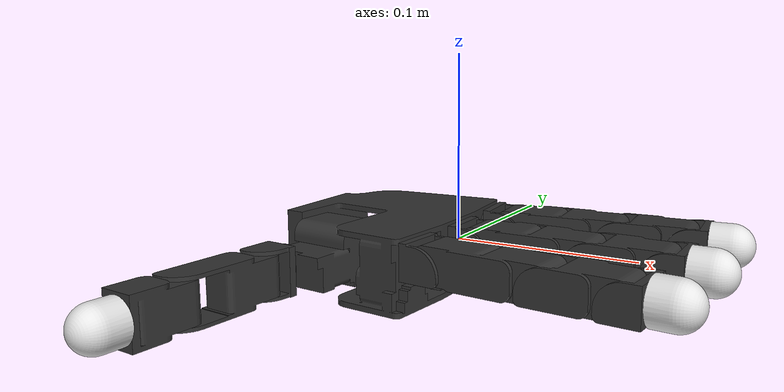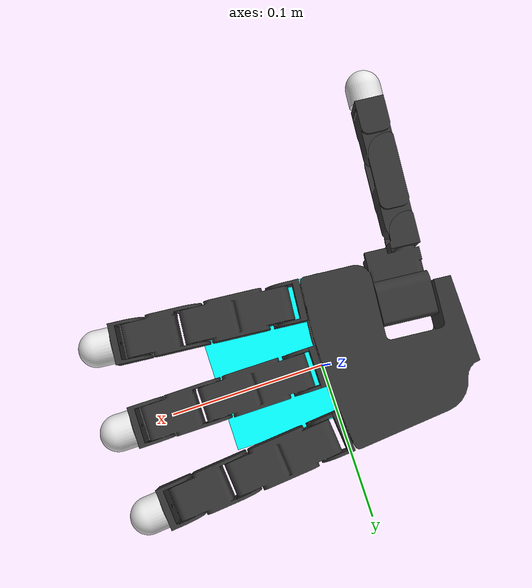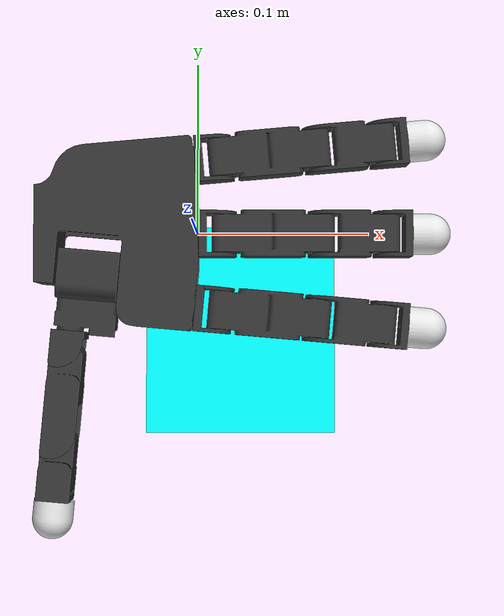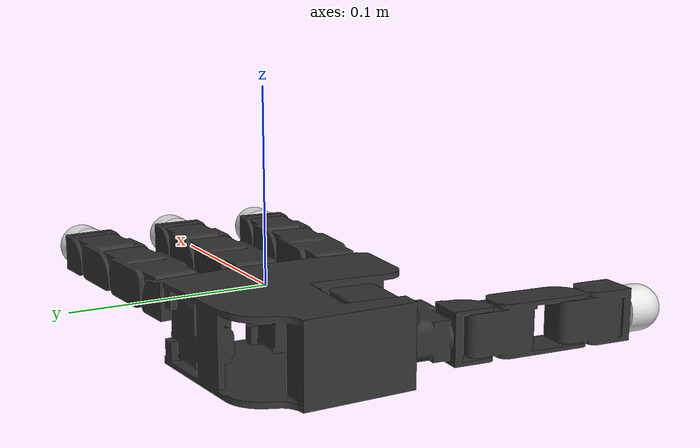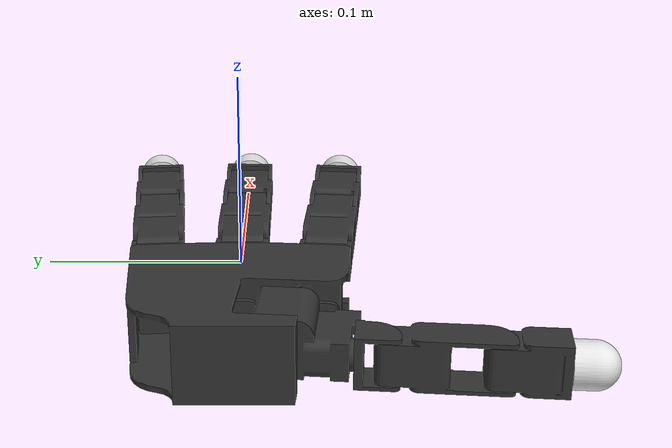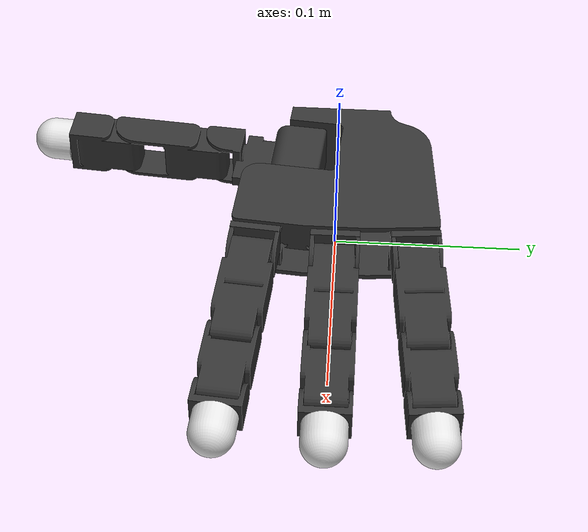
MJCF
<mujoco model="allegro_scene">
<!-- Copyright (c) 2023 Robotics and AI Institute LLC dba RAI Institute. All rights reserved. -->
  <include file="allegro_components/params_and_default.xml" />

  <include file="allegro_components/assets.xml" />

  <worldbody>
    <body>
      <geom mass="0" name="floor" pos="0 0 -2.00" size="10.0 10.0 0.05" rgba="0 1 1 1" type="box"/>
    </body>

    <body name="object" pos="0 0 0" gravcomp="0">
      <freejoint/>
      <site pos="0 0 0" name="site_object"/>
      <geom type="box" mass="0.15" pos="0 0 0" quat="1 0 0 0" size="0.030 0.030 0.030" rgba="0.97 0.85 0.38 1" class="collision"/>
    </body>
  </worldbody>

  <worldbody>
    <body name="palm" quat="0 1 0 1" childclass="allegro_right">
      <inertial mass="0.4154" pos="0 0 0.0475" diaginertia="1e-4 1e-4 1e-4"/>
      <geom class="palm_visual" mesh="base_link"/>
      <geom class="palm_collision"/>
      <joint name="palm_x" axis="0 0 1" class="palm"/>
      <joint name="palm_y" axis="0 -1 0" class="palm"/>

      <include file="allegro_components/fingers.xml" />

    </body>
  </worldbody>

  <include file="allegro_components/contacts_and_sensors.xml" />

  <actuator>
    <position name="palm_x" joint="palm_x" class="palm"/>
    <position name="palm_y" joint="palm_y" class="palm"/>
    <position name="ffa0" joint="ffj0" class="base"/>
    <position name="ffa1" joint="ffj1" class="proximal"/>
    <position name="ffa2" joint="ffj2" class="medial"/>
    <position name="ffa3" joint="ffj3" class="distal"/>
    <position name="mfa0" joint="mfj0" class="base"/>
    <position name="mfa1" joint="mfj1" class="proximal"/>
    <position name="mfa2" joint="mfj2" class="medial"/>
    <position name="mfa3" joint="mfj3" class="distal"/>
    <position name="rfa0" joint="rfj0" class="base"/>
    <position name="rfa1" joint="rfj1" class="proximal"/>
    <position name="rfa2" joint="rfj2" class="medial"/>
    <position name="rfa3" joint="rfj3" class="distal"/>
    <position name="tha0" joint="thj0" class="thumb_base"/>
    <position name="tha1" joint="thj1" class="thumb_proximal"/>
    <position name="tha2" joint="thj2" class="thumb_medial"/>
    <position name="tha3" joint="thj3" class="thumb_distal"/>
  </actuator>

</mujoco>

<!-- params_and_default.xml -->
<mujoco model="allegro_default">
<!-- Copyright (c) 2023 Robotics and AI Institute LLC dba RAI Institute. All rights reserved. -->
  <compiler angle="radian" meshdir="../../meshes/allegro/visual/" autolimits="true"/>

  <option timestep="0.004">
  <!-- MJX options, commeted out for now -->
  </option>

  <custom>
    <numeric data="15" name="max_contact_points"/>
  </custom>

  <default>
    <default class="allegro_right">
      <joint axis="0 1 0" damping=".25"/>
      <position forcerange="-2.5 2.5"/>
      <geom density="800"/>

      <default class="visual">
        <geom type="mesh" contype="0" conaffinity="0" group="2" material="black"/>
        <default class="palm_visual">
          <geom mesh="base_link"/>
        </default>
        <default class="base_visual">
          <geom mesh="link_0.0"/>
        </default>
        <default class="proximal_visual">
          <geom mesh="link_1.0"/>
        </default>
        <default class="medial_visual">
          <geom mesh="link_2.0"/>
        </default>
        <default class="distal_visual">
          <geom mesh="link_3.0"/>
        </default>
        <default class="fingertip_visual">
          <geom pos="0 0 0.0267" material="white" mesh="link_3.0_tip"/>
        </default>
        <default class="thumbtip_visual">
          <geom pos="0 0 0.0423" material="white" mesh="link_15.0_tip"/>
        </default>
      </default>

      <default class="collision">
        <geom group="3" friction="0.30" priority="4" material="transparent"/>
        <!-- MJX options, commeted out for now -->
        <default class="box_collision">
          <geom type="box" mass="0" />
          <default class="palm_collision">
            <geom size="0.0204 0.0565 0.0475" pos="-0.0093 0 -0.0475"/>
          </default>
          <default class="base_collision">
            <geom size="0.0098 0.01375 0.0082" pos="0 0 0.0082"/>
            <default class="thumb_base_collision_0">
              <geom size="0.0179 0.017 0.011" pos="-0.0179 0.009 0.003"/>
            </default>
            <default class="thumb_base_collision_1">
              <geom size="0.0179 0.00980 0.012" pos="-0.0179 0.005 0.0255"/>
            </default>
            <!-- This geometry is commented out, while we wait for MJX to support cylinder collisions. -->
          </default>
          <default class="proximal_collision">
            <geom size="0.0098 0.01375 0.027" pos="0 0 0.027"/>
            <default class="thumb_proximal_collision">
              <geom size="0.0098 0.01375 0.00885" pos="0 0 0.00885"/>
            </default>
          </default>
          <default class="medial_collision">
            <geom size="0.0098 0.01375 0.0192" pos="0 0 0.0192"/>
            <default class="thumb_medial_collision">
              <geom size="0.0098 0.01375 0.0257" pos="0 0 0.0257"/>
            </default>
          </default>
          <default class="distal_collision">
            <geom size="0.0098 0.01375 0.008" pos="0 0 0.008"/>
            <default class="thumb_distal_collision">
              <geom size="0.0098 0.01375 0.0157" pos="0 0 0.0157"/>
            </default>
          </default>
          <default class="fingertip_collision">
            <geom type="capsule" size="0.012 0.008" pos="0 0 0.019"/>
            <default class="thumbtip_collision">
              <geom type="capsule" size="0.012 0.0075" pos="0 0 0.035"/>
            </default>
          </default>
        </default>
      </default>

      <default class="palm">
        <joint damping="0.5" range="-0.15 0.15"/>
        <position kp="5" ctrlrange="-0.15 0.15" forcerange="-5 5"/>
      </default>
      <default class="base">
        <joint axis="0 0 1" range="-0.47 0.47"/>
        <position kp="1.0" ctrlrange="-0.47 0.47"/>
      </default>
      <default class="proximal">
        <joint range="-0.196 1.61"/>
        <position kp="2.0" ctrlrange="-0.196 1.61"/>
      </default>
      <default class="medial">
        <joint range="-0.174 1.709"/>
        <position kp="1.5" ctrlrange="-0.174 1.709"/>
      </default>
      <default class="distal">
        <joint range="-0.227 1.618"/>
        <position kp="1.0" ctrlrange="-0.227 1.618"/>
      </default>
      <default class="thumb_base">
        <joint axis="-1 0 0" range="0.263 1.396"/>
        <position kp="1.0" ctrlrange="0.263 1.396"/>
      </default>
      <default class="thumb_proximal">
        <joint axis="0 0 1" range="-0.105 1.163"/>
        <position kp="2.0" ctrlrange="-0.105 1.163"/>
      </default>
      <default class="thumb_medial">
        <joint range="-0.189 1.644"/>
        <position kp="1.5" ctrlrange="-0.189 1.644"/>
      </default>
      <default class="thumb_distal">
        <joint range="-0.162 1.719"/>
        <position kp="1.0" ctrlrange="-0.162 1.719"/>
      </default>
    </default>
  </default>
</mujoco>

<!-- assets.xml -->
<mujoco model="allegro_assets">
<!-- Copyright (c) 2023 Robotics and AI Institute LLC dba RAI Institute. All rights reserved. -->
  <asset>
    <material name="black" rgba="0.2 0.2 0.2 1"/>
    <material name="white" rgba="0.9 0.9 0.9 1"/>
    <material name="transparent" rgba="0 0 0 0"/>

    <mesh name = "base_link" file="../../meshes/allegro/visual/base_link.obj"/>
    <mesh name = "link_0.0" file="../../meshes/allegro/visual/link_0.0.obj"/>
    <mesh name = "link_1.0" file="../../meshes/allegro/visual/link_1.0.obj"/>
    <mesh name = "link_2.0" file="../../meshes/allegro/visual/link_2.0.obj"/>
    <mesh name = "link_3.0" file="../../meshes/allegro/visual/link_3.0.obj"/>
    <mesh name = "link_3.0_tip" file="../../meshes/allegro/visual/link_3.0_tip.obj"/>
    <mesh name = "link_12.0_right" file="../../meshes/allegro/visual/link_12.0_right.obj"/>
    <mesh name = "link_13.0" file="../../meshes/allegro/visual/link_13.0.obj"/>
    <mesh name = "link_14.0" file="../../meshes/allegro/visual/link_14.0.obj"/>
    <mesh name = "link_15.0" file="../../meshes/allegro/visual/link_15.0.obj"/>
    <mesh name = "link_15.0_tip" file="../../meshes/allegro/visual/link_15.0_tip.obj"/>
  </asset>
</mujoco>

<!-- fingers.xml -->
<mujoco model="allegro_assets">
<!-- Copyright (c) 2023 Robotics and AI Institute LLC dba RAI Institute. All rights reserved. -->
  <!-- First finger -->
  <body name="ff_base" pos="0 0.0435 -0.001542" quat="0.999048 -0.0436194 0 0">
    <joint name="ffj0" class="base"/>
    <geom class="base_visual"/>
    <geom class="base_collision"/>
    <body name="ff_proximal" pos="0 0 0.0164">
      <joint name="ffj1" class="proximal"/>
      <geom class="proximal_visual"/>
      <geom class="proximal_collision"/>
      <body name="ff_medial" pos="0 0 0.054">
        <joint name="ffj2" class="medial"/>
        <geom class="medial_visual"/>
        <geom class="medial_collision"/>
        <body name="ff_distal" pos="0 0 0.0384">
          <joint name="ffj3" class="distal"/>
          <geom class="distal_visual"/>
          <geom class="distal_collision"/>
          <body name="ff_tip">
            <geom class="fingertip_visual"/>
            <geom class="fingertip_collision"/>
            <site pos="0 0 0" name="site_ff_tip"/>
          </body>
        </body>
      </body>
    </body>
  </body>
  <!-- Middle finger -->
  <body name="mf_base" pos="0 0 0.0007">
    <joint name="mfj0" class="base"/>
    <geom class="base_visual"/>
    <geom class="base_collision"/>
    <body name="mf_proximal" pos="0 0 0.0164">
      <joint name="mfj1" class="proximal"/>
      <geom class="proximal_visual"/>
      <geom class="proximal_collision"/>
      <body name="mf_medial" pos="0 0 0.054">
        <joint name="mfj2" class="medial"/>
        <geom class="medial_visual"/>
        <geom class="medial_collision"/>
        <body name="mf_distal" pos="0 0 0.0384">
          <joint name="mfj3" class="distal"/>
          <geom class="distal_visual"/>
          <geom class="distal_collision"/>
          <body name="mf_tip">
            <geom class="fingertip_visual"/>
            <geom class="fingertip_collision"/>
            <site pos="0 0 0" name="site_mf_tip"/>
          </body>
        </body>
      </body>
    </body>
  </body>
  <!-- Ring finger -->
  <body name="rf_base" pos="0 -0.0435 -0.001542" quat="0.999048 0.0436194 0 0">
    <joint name="rfj0" class="base"/>
    <geom class="base_visual"/>
    <geom class="base_collision"/>
    <body name="rf_proximal" pos="0 0 0.0164">
      <joint name="rfj1" class="proximal"/>
      <geom class="proximal_visual"/>
      <geom class="proximal_collision"/>
      <body name="rf_medial" pos="0 0 0.054">
        <joint name="rfj2" class="medial"/>
        <geom class="medial_visual"/>
        <geom class="medial_collision"/>
        <body name="rf_distal" pos="0 0 0.0384">
          <joint name="rfj3" class="distal"/>
          <geom class="distal_visual"/>
          <geom class="distal_collision"/>
          <body name="rf_tip">
            <geom class="fingertip_visual"/>
            <geom class="fingertip_collision"/>
            <site pos="0 0 0" name="site_rf_tip"/>
          </body>
        </body>
      </body>
    </body>
  </body>
  <!-- Thumb -->
  <body name="th_base" pos="-0.0182 0.019333 -0.045987" quat="0.477714 -0.521334 -0.521334 -0.477714">
    <joint name="thj0" class="thumb_base"/>
    <geom class="visual" mesh="link_12.0_right"/>
    <geom class="thumb_base_collision_0"/>
    <geom class="thumb_base_collision_1"/>
    <!-- This geometry is commented out, while we wait for MJX to support cylinder collisions. -->
    <body name="th_proximal" pos="-0.027 0.005 0.0399">
      <joint name="thj1" class="thumb_proximal"/>
      <geom class="visual" mesh="link_13.0"/>
      <geom class="thumb_proximal_collision"/>
      <body name="th_medial" pos="0 0 0.0177">
        <joint name="thj2" class="thumb_medial"/>
        <geom class="visual" mesh="link_14.0"/>
        <geom class="thumb_medial_collision"/>
        <body name="th_distal" pos="0 0 0.0514">
          <joint name="thj3" class="thumb_distal"/>
          <geom class="visual" mesh="link_15.0"/>
          <geom class="thumb_distal_collision"/>
          <body name="th_tip">
            <geom class="thumbtip_visual"/>
            <geom class="thumbtip_collision"/>
            <site pos="0 0 0" name="site_th_tip"/>
          </body>
        </body>
      </body>
    </body>
  </body>
</mujoco>

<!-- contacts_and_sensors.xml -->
<mujoco model="allegro_contacts_and_sensors">
<!-- Copyright (c) 2023 Robotics and AI Institute LLC dba RAI Institute. All rights reserved. -->
  <contact>
    <exclude body1="palm" body2="ff_base"/>
    <exclude body1="palm" body2="ff_proximal"/>
    <exclude body1="palm" body2="ff_medial"/>
    <exclude body1="palm" body2="mf_base"/>
    <exclude body1="palm" body2="mf_proximal"/>
    <exclude body1="palm" body2="mf_medial"/>
    <exclude body1="palm" body2="rf_base"/>
    <exclude body1="palm" body2="rf_proximal"/>
    <exclude body1="palm" body2="rf_medial"/>
    <exclude body1="palm" body2="th_base"/>
    <exclude body1="palm" body2="th_proximal"/>
    <exclude body1="palm" body2="th_medial"/>
    <exclude body1="th_base" body2="ff_base"/>
    <exclude body1="th_base" body2="mf_base"/>
    <exclude body1="th_base" body2="rf_base"/>
    <exclude body1="th_base" body2="ff_proximal"/>
    <exclude body1="th_base" body2="mf_proximal"/>
    <exclude body1="th_base" body2="rf_proximal"/>
    <exclude body1="th_base" body2="ff_medial"/>
    <exclude body1="th_base" body2="mf_medial"/>
    <exclude body1="th_base" body2="rf_medial"/>
    <exclude body1="th_proximal" body2="ff_base"/>
    <exclude body1="th_proximal" body2="mf_base"/>
    <exclude body1="th_proximal" body2="rf_base"/>
    <exclude body1="th_proximal" body2="ff_proximal"/>
    <exclude body1="th_proximal" body2="mf_proximal"/>
    <exclude body1="th_proximal" body2="rf_proximal"/>
    <exclude body1="th_medial" body2="mf_base"/>
    <exclude body1="th_medial" body2="rf_base"/>
    <exclude body1="th_medial" body2="rf_proximal"/>
    <exclude body1="ff_base" body2="mf_base"/>
    <exclude body1="ff_base" body2="rf_base"/>
    <exclude body1="ff_proximal" body2="mf_base"/>
    <exclude body1="ff_proximal" body2="rf_base"/>
    <exclude body1="ff_proximal" body2="rf_proximal"/>
    <exclude body1="mf_base" body2="rf_base"/>
    <exclude body1="ff_medial" body2="rf_medial"/>
  </contact>

  <sensor>
    <framepos name="sensor_ff_tip" objtype="site" objname="site_ff_tip" reftype="site" refname="site_object"/>
    <framepos name="sensor_mf_tip" objtype="site" objname="site_mf_tip" reftype="site" refname="site_object"/>
    <framepos name="sensor_rf_tip" objtype="site" objname="site_rf_tip" reftype="site" refname="site_object"/>
    <framepos name="sensor_th_tip" objtype="site" objname="site_th_tip" reftype="site" refname="site_object"/>
  </sensor>

</mujoco>
